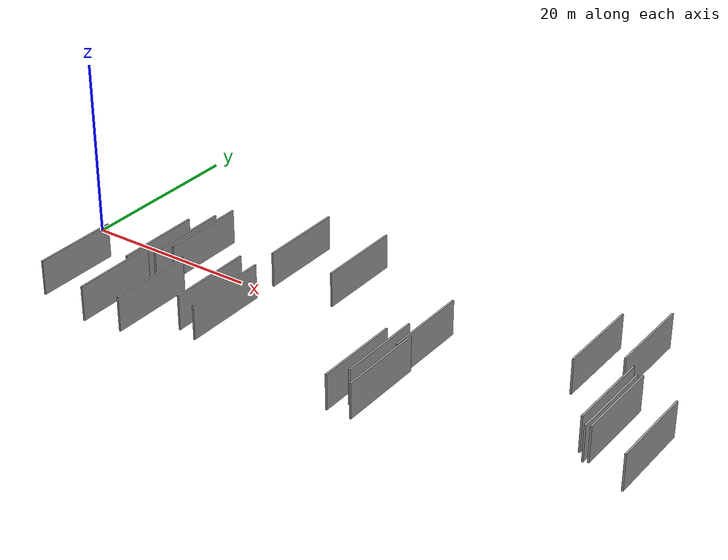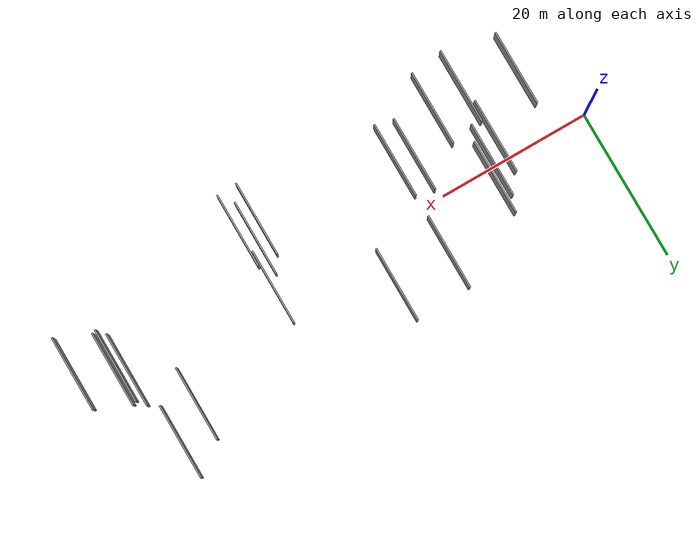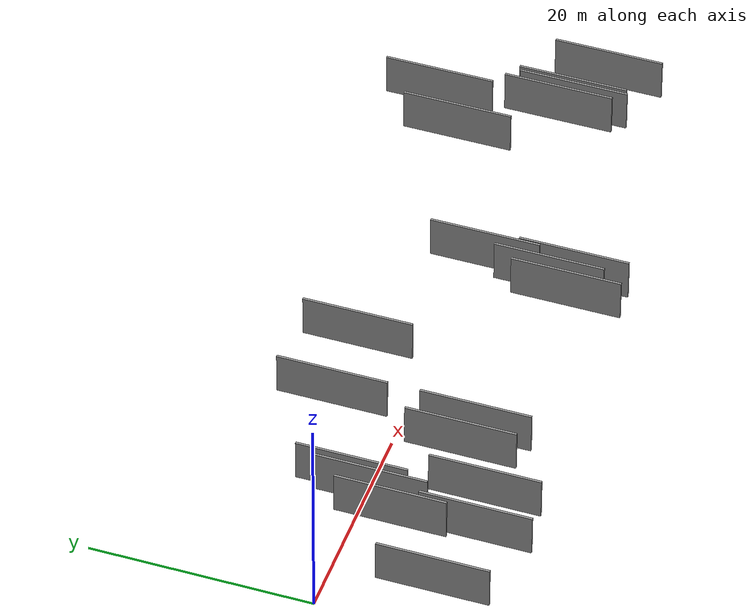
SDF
<sdf version="1.6">
 <world name="default">
  <scene>
   <sky><clouds><speed>12</speed></clouds></sky>
   <ambient>0.4 0.4 0.4 1</ambient>
   <background>0.7 0.7 0.7 1</background>
   <shadows>1</shadows>
  </scene>
  <gravity>0 0 -9.8066</gravity>
  <magnetic_field>6e-06 2.3e-05 -4.2e-05</magnetic_field>
  <physics default="0" name="default_physics" type="ode">
   <ode>
    <solver>
     <type>quick</type>
     <iters>10</iters>
     <sor>1.0</sor>
     <use_dynamic_moi_rescaling>0</use_dynamic_moi_rescaling>
    </solver>
    <constraints>
     <cfm>0</cfm>
     <erp>0.2</erp>
     <contact_max_correcting_vel>100</contact_max_correcting_vel>
     <contact_surface_layer>0.001</contact_surface_layer>
    </constraints>
   </ode>
   <max_step_size>0.004</max_step_size>
   <real_time_factor>1</real_time_factor>
   <real_time_update_rate>250</real_time_update_rate>
  </physics>
  <light name="sun" type="directional">
   <pose>0 0 10 0 0 0</pose>
   <diffuse>0.8 0.8 0.8 1</diffuse>
   <specular>0.2 0.2 0.2 1</specular>
   <attenuation>
    <range>1000</range>
    <constant>0.9</constant>
    <linear>0.01</linear>
    <quadratic>0.001</quadratic>
   </attenuation>
   <direction>-0.5 0.1 -0.9</direction>
  </light>
  <model name="grey_wall_1">
   <static>1</static>
   <pose>23.0872 6.4572 0.0 0.000000 0.000000 1.570796</pose>
   <link name="link">
    <pose>0 0 2.00 0 0 0</pose>
    <collision name="collision"><geometry><box><size>10.00 0.2 4.00</size></box></geometry></collision>
    <visual name="visual">
     <cast_shadows>0</cast_shadows>
     <geometry><box><size>10.00 0.2 4.00</size></box></geometry>
     <material>
      <script>
       <uri>model://grey_wall/materials/scripts</uri>
       <uri>model://grey_wall/materials/textures</uri>
       <name>vrc/grey_wall</name>
      </script>
     </material>
    </visual>
   </link>
  </model>
  <model name="grey_wall_2">
   <static>1</static>
   <pose>58.5784 7.0230 0.0 0.000000 0.000000 1.570796</pose>
   <link name="link">
    <pose>0 0 2.00 0 0 0</pose>
    <collision name="collision"><geometry><box><size>10.00 0.2 4.00</size></box></geometry></collision>
    <visual name="visual">
     <cast_shadows>0</cast_shadows>
     <geometry><box><size>10.00 0.2 4.00</size></box></geometry>
     <material>
      <script>
       <uri>model://grey_wall/materials/scripts</uri>
       <uri>model://grey_wall/materials/textures</uri>
       <name>vrc/grey_wall</name>
      </script>
     </material>
    </visual>
   </link>
  </model>
  <model name="grey_wall_3">
   <static>1</static>
   <pose>43.8865 -8.5590 0.0 0.000000 0.000000 1.570796</pose>
   <link name="link">
    <pose>0 0 2.00 0 0 0</pose>
    <collision name="collision"><geometry><box><size>10.00 0.2 4.00</size></box></geometry></collision>
    <visual name="visual">
     <cast_shadows>0</cast_shadows>
     <geometry><box><size>10.00 0.2 4.00</size></box></geometry>
     <material>
      <script>
       <uri>model://grey_wall/materials/scripts</uri>
       <uri>model://grey_wall/materials/textures</uri>
       <name>vrc/grey_wall</name>
      </script>
     </material>
    </visual>
   </link>
  </model>
  <model name="grey_wall_4">
   <static>1</static>
   <pose>64.7438 -1.8446 0.0 0.000000 0.000000 1.570796</pose>
   <link name="link">
    <pose>0 0 2.00 0 0 0</pose>
    <collision name="collision"><geometry><box><size>10.00 0.2 4.00</size></box></geometry></collision>
    <visual name="visual">
     <cast_shadows>0</cast_shadows>
     <geometry><box><size>10.00 0.2 4.00</size></box></geometry>
     <material>
      <script>
       <uri>model://grey_wall/materials/scripts</uri>
       <uri>model://grey_wall/materials/textures</uri>
       <name>vrc/grey_wall</name>
      </script>
     </material>
    </visual>
   </link>
  </model>
  <model name="grey_wall_5">
   <static>1</static>
   <pose>11.6194 -10.2387 0.0 0.000000 0.000000 1.570796</pose>
   <link name="link">
    <pose>0 0 2.00 0 0 0</pose>
    <collision name="collision"><geometry><box><size>10.00 0.2 4.00</size></box></geometry></collision>
    <visual name="visual">
     <cast_shadows>0</cast_shadows>
     <geometry><box><size>10.00 0.2 4.00</size></box></geometry>
     <material>
      <script>
       <uri>model://grey_wall/materials/scripts</uri>
       <uri>model://grey_wall/materials/textures</uri>
       <name>vrc/grey_wall</name>
      </script>
     </material>
    </visual>
   </link>
  </model>
  <model name="grey_wall_6">
   <static>1</static>
   <pose>41.1895 -8.6862 0.0 0.000000 0.000000 1.570796</pose>
   <link name="link">
    <pose>0 0 2.00 0 0 0</pose>
    <collision name="collision"><geometry><box><size>10.00 0.2 4.00</size></box></geometry></collision>
    <visual name="visual">
     <cast_shadows>0</cast_shadows>
     <geometry><box><size>10.00 0.2 4.00</size></box></geometry>
     <material>
      <script>
       <uri>model://grey_wall/materials/scripts</uri>
       <uri>model://grey_wall/materials/textures</uri>
       <name>vrc/grey_wall</name>
      </script>
     </material>
    </visual>
   </link>
  </model>
  <model name="grey_wall_7">
   <static>1</static>
   <pose>11.0862 -2.8782 0.0 0.000000 0.000000 1.570796</pose>
   <link name="link">
    <pose>0 0 2.00 0 0 0</pose>
    <collision name="collision"><geometry><box><size>10.00 0.2 4.00</size></box></geometry></collision>
    <visual name="visual">
     <cast_shadows>0</cast_shadows>
     <geometry><box><size>10.00 0.2 4.00</size></box></geometry>
     <material>
      <script>
       <uri>model://grey_wall/materials/scripts</uri>
       <uri>model://grey_wall/materials/textures</uri>
       <name>vrc/grey_wall</name>
      </script>
     </material>
    </visual>
   </link>
  </model>
  <model name="grey_wall_8">
   <static>1</static>
   <pose>69.6806 -3.5806 0.0 0.000000 0.000000 1.570796</pose>
   <link name="link">
    <pose>0 0 2.00 0 0 0</pose>
    <collision name="collision"><geometry><box><size>10.00 0.2 4.00</size></box></geometry></collision>
    <visual name="visual">
     <cast_shadows>0</cast_shadows>
     <geometry><box><size>10.00 0.2 4.00</size></box></geometry>
     <material>
      <script>
       <uri>model://grey_wall/materials/scripts</uri>
       <uri>model://grey_wall/materials/textures</uri>
       <name>vrc/grey_wall</name>
      </script>
     </material>
    </visual>
   </link>
  </model>
  <model name="grey_wall_9">
   <static>1</static>
   <pose>63.8043 -0.7299 0.0 0.000000 0.000000 1.570796</pose>
   <link name="link">
    <pose>0 0 2.00 0 0 0</pose>
    <collision name="collision"><geometry><box><size>10.00 0.2 4.00</size></box></geometry></collision>
    <visual name="visual">
     <cast_shadows>0</cast_shadows>
     <geometry><box><size>10.00 0.2 4.00</size></box></geometry>
     <material>
      <script>
       <uri>model://grey_wall/materials/scripts</uri>
       <uri>model://grey_wall/materials/textures</uri>
       <name>vrc/grey_wall</name>
      </script>
     </material>
    </visual>
   </link>
  </model>
  <model name="grey_wall_10">
   <static>1</static>
   <pose>20.7131 -5.8970 0.0 0.000000 0.000000 1.570796</pose>
   <link name="link">
    <pose>0 0 2.00 0 0 0</pose>
    <collision name="collision"><geometry><box><size>10.00 0.2 4.00</size></box></geometry></collision>
    <visual name="visual">
     <cast_shadows>0</cast_shadows>
     <geometry><box><size>10.00 0.2 4.00</size></box></geometry>
     <material>
      <script>
       <uri>model://grey_wall/materials/scripts</uri>
       <uri>model://grey_wall/materials/textures</uri>
       <name>vrc/grey_wall</name>
      </script>
     </material>
    </visual>
   </link>
  </model>
  <model name="grey_wall_11">
   <static>1</static>
   <pose>13.6927 1.4413 0.0 0.000000 0.000000 1.570796</pose>
   <link name="link">
    <pose>0 0 2.00 0 0 0</pose>
    <collision name="collision"><geometry><box><size>10.00 0.2 4.00</size></box></geometry></collision>
    <visual name="visual">
     <cast_shadows>0</cast_shadows>
     <geometry><box><size>10.00 0.2 4.00</size></box></geometry>
     <material>
      <script>
       <uri>model://grey_wall/materials/scripts</uri>
       <uri>model://grey_wall/materials/textures</uri>
       <name>vrc/grey_wall</name>
      </script>
     </material>
    </visual>
   </link>
  </model>
  <model name="grey_wall_12">
   <static>1</static>
   <pose>15.9839 -9.6368 0.0 0.000000 0.000000 1.570796</pose>
   <link name="link">
    <pose>0 0 2.00 0 0 0</pose>
    <collision name="collision"><geometry><box><size>10.00 0.2 4.00</size></box></geometry></collision>
    <visual name="visual">
     <cast_shadows>0</cast_shadows>
     <geometry><box><size>10.00 0.2 4.00</size></box></geometry>
     <material>
      <script>
       <uri>model://grey_wall/materials/scripts</uri>
       <uri>model://grey_wall/materials/textures</uri>
       <name>vrc/grey_wall</name>
      </script>
     </material>
    </visual>
   </link>
  </model>
  <model name="grey_wall_13">
   <static>1</static>
   <pose>23.1178 -6.4485 0.0 0.000000 0.000000 1.570796</pose>
   <link name="link">
    <pose>0 0 2.00 0 0 0</pose>
    <collision name="collision"><geometry><box><size>10.00 0.2 4.00</size></box></geometry></collision>
    <visual name="visual">
     <cast_shadows>0</cast_shadows>
     <geometry><box><size>10.00 0.2 4.00</size></box></geometry>
     <material>
      <script>
       <uri>model://grey_wall/materials/scripts</uri>
       <uri>model://grey_wall/materials/textures</uri>
       <name>vrc/grey_wall</name>
      </script>
     </material>
    </visual>
   </link>
  </model>
  <model name="grey_wall_14">
   <static>1</static>
   <pose>43.5943 -0.5229 0.0 0.000000 0.000000 1.570796</pose>
   <link name="link">
    <pose>0 0 2.00 0 0 0</pose>
    <collision name="collision"><geometry><box><size>10.00 0.2 4.00</size></box></geometry></collision>
    <visual name="visual">
     <cast_shadows>0</cast_shadows>
     <geometry><box><size>10.00 0.2 4.00</size></box></geometry>
     <material>
      <script>
       <uri>model://grey_wall/materials/scripts</uri>
       <uri>model://grey_wall/materials/textures</uri>
       <name>vrc/grey_wall</name>
      </script>
     </material>
    </visual>
   </link>
  </model>
  <model name="grey_wall_15">
   <static>1</static>
   <pose>65.2399 -1.6350 0.0 0.000000 0.000000 1.570796</pose>
   <link name="link">
    <pose>0 0 2.00 0 0 0</pose>
    <collision name="collision"><geometry><box><size>10.00 0.2 4.00</size></box></geometry></collision>
    <visual name="visual">
     <cast_shadows>0</cast_shadows>
     <geometry><box><size>10.00 0.2 4.00</size></box></geometry>
     <material>
      <script>
       <uri>model://grey_wall/materials/scripts</uri>
       <uri>model://grey_wall/materials/textures</uri>
       <name>vrc/grey_wall</name>
      </script>
     </material>
    </visual>
   </link>
  </model>
  <model name="grey_wall_16">
   <static>1</static>
   <pose>4.6838 -8.7929 0.0 0.000000 0.000000 1.570796</pose>
   <link name="link">
    <pose>0 0 2.00 0 0 0</pose>
    <collision name="collision"><geometry><box><size>10.00 0.2 4.00</size></box></geometry></collision>
    <visual name="visual">
     <cast_shadows>0</cast_shadows>
     <geometry><box><size>10.00 0.2 4.00</size></box></geometry>
     <material>
      <script>
       <uri>model://grey_wall/materials/scripts</uri>
       <uri>model://grey_wall/materials/textures</uri>
       <name>vrc/grey_wall</name>
      </script>
     </material>
    </visual>
   </link>
  </model>
  <model name="grey_wall_17">
   <static>1</static>
   <pose>12.9128 -0.5733 0.0 0.000000 0.000000 1.570796</pose>
   <link name="link">
    <pose>0 0 2.00 0 0 0</pose>
    <collision name="collision"><geometry><box><size>10.00 0.2 4.00</size></box></geometry></collision>
    <visual name="visual">
     <cast_shadows>0</cast_shadows>
     <geometry><box><size>10.00 0.2 4.00</size></box></geometry>
     <material>
      <script>
       <uri>model://grey_wall/materials/scripts</uri>
       <uri>model://grey_wall/materials/textures</uri>
       <name>vrc/grey_wall</name>
      </script>
     </material>
    </visual>
   </link>
  </model>
  <model name="grey_wall_18">
   <static>1</static>
   <pose>30.5275 6.7041 0.0 0.000000 0.000000 1.570796</pose>
   <link name="link">
    <pose>0 0 2.00 0 0 0</pose>
    <collision name="collision"><geometry><box><size>10.00 0.2 4.00</size></box></geometry></collision>
    <visual name="visual">
     <cast_shadows>0</cast_shadows>
     <geometry><box><size>10.00 0.2 4.00</size></box></geometry>
     <material>
      <script>
       <uri>model://grey_wall/materials/scripts</uri>
       <uri>model://grey_wall/materials/textures</uri>
       <name>vrc/grey_wall</name>
      </script>
     </material>
    </visual>
   </link>
  </model>
  <model name="grey_wall_19">
   <static>1</static>
   <pose>42.4820 -6.7375 0.0 0.000000 0.000000 1.570796</pose>
   <link name="link">
    <pose>0 0 2.00 0 0 0</pose>
    <collision name="collision"><geometry><box><size>10.00 0.2 4.00</size></box></geometry></collision>
    <visual name="visual">
     <cast_shadows>0</cast_shadows>
     <geometry><box><size>10.00 0.2 4.00</size></box></geometry>
     <material>
      <script>
       <uri>model://grey_wall/materials/scripts</uri>
       <uri>model://grey_wall/materials/textures</uri>
       <name>vrc/grey_wall</name>
      </script>
     </material>
    </visual>
   </link>
  </model>
  <model name="grey_wall_20">
   <static>1</static>
   <pose>62.5171 10.0142 0.0 0.000000 0.000000 1.570796</pose>
   <link name="link">
    <pose>0 0 2.00 0 0 0</pose>
    <collision name="collision"><geometry><box><size>10.00 0.2 4.00</size></box></geometry></collision>
    <visual name="visual">
     <cast_shadows>0</cast_shadows>
     <geometry><box><size>10.00 0.2 4.00</size></box></geometry>
     <material>
      <script>
       <uri>model://grey_wall/materials/scripts</uri>
       <uri>model://grey_wall/materials/textures</uri>
       <name>vrc/grey_wall</name>
      </script>
     </material>
    </visual>
   </link>
  </model>
 </world>
</sdf>
